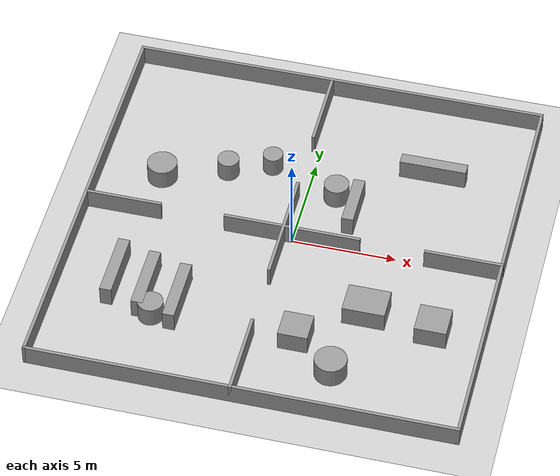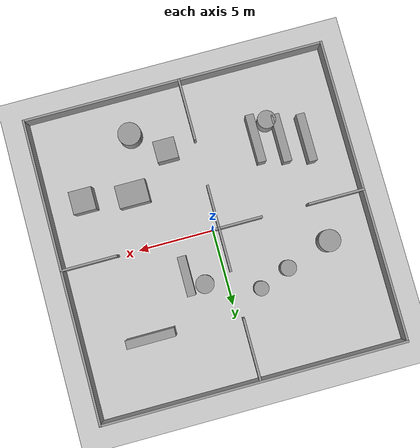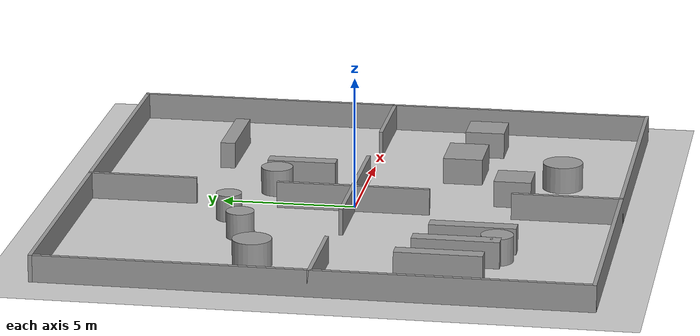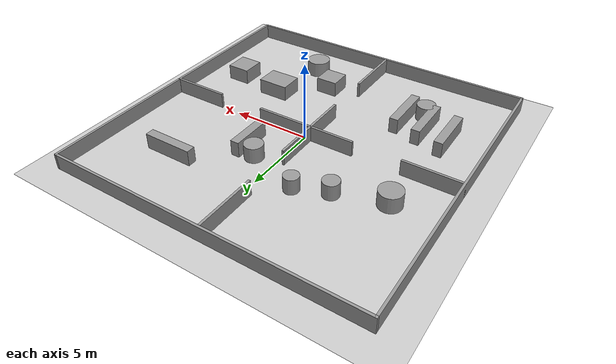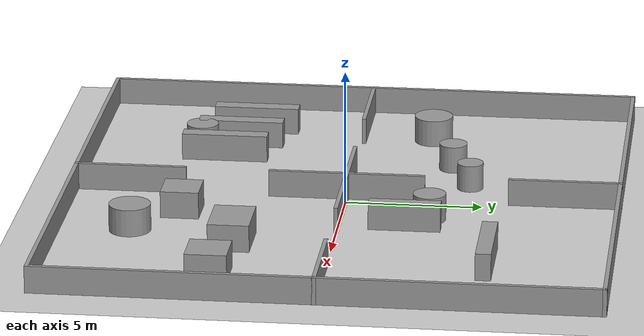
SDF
<?xml version="1.0" ?>
<sdf version="1.6">
  <world name="four_rooms">

    <include><uri>model://sun</uri></include>
    <include><uri>model://ground_plane</uri></include>

    <physics name="default_physics" default="true" type="ode">
      <max_step_size>0.001</max_step_size>
      <real_time_factor>1.0</real_time_factor>
      <real_time_update_rate>1000</real_time_update_rate>
    </physics>

    <scene>
      <ambient>0.4 0.4 0.4 1</ambient>
      <background>0.7 0.7 0.7 1</background>
      <shadows>false</shadows>
    </scene>

    <model name="four_rooms_obstacles">
      <static>true</static>
      <link name="body">
      <collision name="col_0">
        <pose>0.0000 -10.0000 0.5000 0 0 0.00000</pose>
        <geometry>
          <box><size>20.1500 0.1500 1.0000</size></box>
        </geometry>
      </collision>
      <visual name="vis_0">
        <pose>0.0000 -10.0000 0.5000 0 0 0.00000</pose>
        <geometry>
          <box><size>20.1500 0.1500 1.0000</size></box>
        </geometry>
        <material>
          <script>
            <uri>file://media/materials/scripts/gazebo.material</uri>
            <name>Gazebo/Grey</name>
          </script>
        </material>
      </visual>
      <collision name="col_1">
        <pose>10.0000 0.0000 0.5000 0 0 1.57080</pose>
        <geometry>
          <box><size>20.1500 0.1500 1.0000</size></box>
        </geometry>
      </collision>
      <visual name="vis_1">
        <pose>10.0000 0.0000 0.5000 0 0 1.57080</pose>
        <geometry>
          <box><size>20.1500 0.1500 1.0000</size></box>
        </geometry>
        <material>
          <script>
            <uri>file://media/materials/scripts/gazebo.material</uri>
            <name>Gazebo/Grey</name>
          </script>
        </material>
      </visual>
      <collision name="col_2">
        <pose>0.0000 10.0000 0.5000 0 0 3.14159</pose>
        <geometry>
          <box><size>20.1500 0.1500 1.0000</size></box>
        </geometry>
      </collision>
      <visual name="vis_2">
        <pose>0.0000 10.0000 0.5000 0 0 3.14159</pose>
        <geometry>
          <box><size>20.1500 0.1500 1.0000</size></box>
        </geometry>
        <material>
          <script>
            <uri>file://media/materials/scripts/gazebo.material</uri>
            <name>Gazebo/Grey</name>
          </script>
        </material>
      </visual>
      <collision name="col_3">
        <pose>-10.0000 0.0000 0.5000 0 0 -1.57080</pose>
        <geometry>
          <box><size>20.1500 0.1500 1.0000</size></box>
        </geometry>
      </collision>
      <visual name="vis_3">
        <pose>-10.0000 0.0000 0.5000 0 0 -1.57080</pose>
        <geometry>
          <box><size>20.1500 0.1500 1.0000</size></box>
        </geometry>
        <material>
          <script>
            <uri>file://media/materials/scripts/gazebo.material</uri>
            <name>Gazebo/Grey</name>
          </script>
        </material>
      </visual>
      <collision name="col_4">
        <pose>-0.4000 -8.0000 0.5000 0 0 1.57080</pose>
        <geometry>
          <box><size>4.1500 0.1500 1.0000</size></box>
        </geometry>
      </collision>
      <visual name="vis_4">
        <pose>-0.4000 -8.0000 0.5000 0 0 1.57080</pose>
        <geometry>
          <box><size>4.1500 0.1500 1.0000</size></box>
        </geometry>
        <material>
          <script>
            <uri>file://media/materials/scripts/gazebo.material</uri>
            <name>Gazebo/Grey</name>
          </script>
        </material>
      </visual>
      <collision name="col_5">
        <pose>-0.4000 0.0000 0.5000 0 0 1.57080</pose>
        <geometry>
          <box><size>5.7500 0.1500 1.0000</size></box>
        </geometry>
      </collision>
      <visual name="vis_5">
        <pose>-0.4000 0.0000 0.5000 0 0 1.57080</pose>
        <geometry>
          <box><size>5.7500 0.1500 1.0000</size></box>
        </geometry>
        <material>
          <script>
            <uri>file://media/materials/scripts/gazebo.material</uri>
            <name>Gazebo/Grey</name>
          </script>
        </material>
      </visual>
      <collision name="col_6">
        <pose>-0.4000 8.0000 0.5000 0 0 1.57080</pose>
        <geometry>
          <box><size>4.1500 0.1500 1.0000</size></box>
        </geometry>
      </collision>
      <visual name="vis_6">
        <pose>-0.4000 8.0000 0.5000 0 0 1.57080</pose>
        <geometry>
          <box><size>4.1500 0.1500 1.0000</size></box>
        </geometry>
        <material>
          <script>
            <uri>file://media/materials/scripts/gazebo.material</uri>
            <name>Gazebo/Grey</name>
          </script>
        </material>
      </visual>
      <collision name="col_7">
        <pose>-8.2000 0.0000 0.5000 0 0 0.00000</pose>
        <geometry>
          <box><size>3.7500 0.1500 1.0000</size></box>
        </geometry>
      </collision>
      <visual name="vis_7">
        <pose>-8.2000 0.0000 0.5000 0 0 0.00000</pose>
        <geometry>
          <box><size>3.7500 0.1500 1.0000</size></box>
        </geometry>
        <material>
          <script>
            <uri>file://media/materials/scripts/gazebo.material</uri>
            <name>Gazebo/Grey</name>
          </script>
        </material>
      </visual>
      <collision name="col_8">
        <pose>0.0000 0.0000 0.5000 0 0 0.00000</pose>
        <geometry>
          <box><size>6.5500 0.1500 1.0000</size></box>
        </geometry>
      </collision>
      <visual name="vis_8">
        <pose>0.0000 0.0000 0.5000 0 0 0.00000</pose>
        <geometry>
          <box><size>6.5500 0.1500 1.0000</size></box>
        </geometry>
        <material>
          <script>
            <uri>file://media/materials/scripts/gazebo.material</uri>
            <name>Gazebo/Grey</name>
          </script>
        </material>
      </visual>
      <collision name="col_9">
        <pose>8.2000 0.0000 0.5000 0 0 0.00000</pose>
        <geometry>
          <box><size>3.7500 0.1500 1.0000</size></box>
        </geometry>
      </collision>
      <visual name="vis_9">
        <pose>8.2000 0.0000 0.5000 0 0 0.00000</pose>
        <geometry>
          <box><size>3.7500 0.1500 1.0000</size></box>
        </geometry>
        <material>
          <script>
            <uri>file://media/materials/scripts/gazebo.material</uri>
            <name>Gazebo/Grey</name>
          </script>
        </material>
      </visual>
      <collision name="col_10">
        <pose>5.6000 5.6000 0.5000 0 0 0.00000</pose>
        <geometry>
          <box><size>3.2000 0.5600 1.0000</size></box>
        </geometry>
      </collision>
      <visual name="vis_10">
        <pose>5.6000 5.6000 0.5000 0 0 0.00000</pose>
        <geometry>
          <box><size>3.2000 0.5600 1.0000</size></box>
        </geometry>
        <material>
          <script>
            <uri>file://media/materials/scripts/gazebo.material</uri>
            <name>Gazebo/Grey</name>
          </script>
        </material>
      </visual>
      <collision name="col_11">
        <pose>4.4000 -3.6000 0.5000 0 0 0.00000</pose>
        <geometry>
          <box><size>2.0000 1.5000 1.0000</size></box>
        </geometry>
      </collision>
      <visual name="vis_11">
        <pose>4.4000 -3.6000 0.5000 0 0 0.00000</pose>
        <geometry>
          <box><size>2.0000 1.5000 1.0000</size></box>
        </geometry>
        <material>
          <script>
            <uri>file://media/materials/scripts/gazebo.material</uri>
            <name>Gazebo/Grey</name>
          </script>
        </material>
      </visual>
      <collision name="col_12">
        <pose>1.6000 -5.8000 0.5000 0 0 0.00000</pose>
        <geometry>
          <box><size>1.4000 1.4000 1.0000</size></box>
        </geometry>
      </collision>
      <visual name="vis_12">
        <pose>1.6000 -5.8000 0.5000 0 0 0.00000</pose>
        <geometry>
          <box><size>1.4000 1.4000 1.0000</size></box>
        </geometry>
        <material>
          <script>
            <uri>file://media/materials/scripts/gazebo.material</uri>
            <name>Gazebo/Grey</name>
          </script>
        </material>
      </visual>
      <collision name="col_13">
        <pose>-7.4000 -4.2000 0.5000 0 0 0.00000</pose>
        <geometry>
          <box><size>0.5600 3.2000 1.0000</size></box>
        </geometry>
      </collision>
      <visual name="vis_13">
        <pose>-7.4000 -4.2000 0.5000 0 0 0.00000</pose>
        <geometry>
          <box><size>0.5600 3.2000 1.0000</size></box>
        </geometry>
        <material>
          <script>
            <uri>file://media/materials/scripts/gazebo.material</uri>
            <name>Gazebo/Grey</name>
          </script>
        </material>
      </visual>
      <collision name="col_14">
        <pose>-5.8000 -4.6000 0.5000 0 0 0.00000</pose>
        <geometry>
          <box><size>0.5600 3.2000 1.0000</size></box>
        </geometry>
      </collision>
      <visual name="vis_14">
        <pose>-5.8000 -4.6000 0.5000 0 0 0.00000</pose>
        <geometry>
          <box><size>0.5600 3.2000 1.0000</size></box>
        </geometry>
        <material>
          <script>
            <uri>file://media/materials/scripts/gazebo.material</uri>
            <name>Gazebo/Grey</name>
          </script>
        </material>
      </visual>
      <collision name="col_15">
        <pose>-4.2000 -5.0000 0.5000 0 0 0.00000</pose>
        <geometry>
          <box><size>0.5600 3.2000 1.0000</size></box>
        </geometry>
      </collision>
      <visual name="vis_15">
        <pose>-4.2000 -5.0000 0.5000 0 0 0.00000</pose>
        <geometry>
          <box><size>0.5600 3.2000 1.0000</size></box>
        </geometry>
        <material>
          <script>
            <uri>file://media/materials/scripts/gazebo.material</uri>
            <name>Gazebo/Grey</name>
          </script>
        </material>
      </visual>
      <collision name="col_16">
        <pose>2.4000 2.4000 0.5000 0 0 0.00000</pose>
        <geometry>
          <box><size>0.5600 2.6000 1.0000</size></box>
        </geometry>
      </collision>
      <visual name="vis_16">
        <pose>2.4000 2.4000 0.5000 0 0 0.00000</pose>
        <geometry>
          <box><size>0.5600 2.6000 1.0000</size></box>
        </geometry>
        <material>
          <script>
            <uri>file://media/materials/scripts/gazebo.material</uri>
            <name>Gazebo/Grey</name>
          </script>
        </material>
      </visual>
      <collision name="col_17">
        <pose>7.6000 -4.0000 0.5000 0 0 0.00000</pose>
        <geometry>
          <box><size>1.5000 1.5000 1.0000</size></box>
        </geometry>
      </collision>
      <visual name="vis_17">
        <pose>7.6000 -4.0000 0.5000 0 0 0.00000</pose>
        <geometry>
          <box><size>1.5000 1.5000 1.0000</size></box>
        </geometry>
        <material>
          <script>
            <uri>file://media/materials/scripts/gazebo.material</uri>
            <name>Gazebo/Grey</name>
          </script>
        </material>
      </visual>
      <collision name="col_18">
        <pose>-7.0000 2.6000 0.5000 0 0 0.00000</pose>
        <geometry>
          <cylinder><radius>0.7200</radius><length>1.0000</length></cylinder>
        </geometry>
      </collision>
      <visual name="vis_18">
        <pose>-7.0000 2.6000 0.5000 0 0 0.00000</pose>
        <geometry>
          <cylinder><radius>0.7200</radius><length>1.0000</length></cylinder>
        </geometry>
        <material>
          <script>
            <uri>file://media/materials/scripts/gazebo.material</uri>
            <name>Gazebo/Grey</name>
          </script>
        </material>
      </visual>
      <collision name="col_19">
        <pose>-4.0000 3.6000 0.5000 0 0 0.00000</pose>
        <geometry>
          <cylinder><radius>0.5200</radius><length>1.0000</length></cylinder>
        </geometry>
      </collision>
      <visual name="vis_19">
        <pose>-4.0000 3.6000 0.5000 0 0 0.00000</pose>
        <geometry>
          <cylinder><radius>0.5200</radius><length>1.0000</length></cylinder>
        </geometry>
        <material>
          <script>
            <uri>file://media/materials/scripts/gazebo.material</uri>
            <name>Gazebo/Grey</name>
          </script>
        </material>
      </visual>
      <collision name="col_20">
        <pose>-2.0000 4.4000 0.5000 0 0 0.00000</pose>
        <geometry>
          <cylinder><radius>0.4800</radius><length>1.0000</length></cylinder>
        </geometry>
      </collision>
      <visual name="vis_20">
        <pose>-2.0000 4.4000 0.5000 0 0 0.00000</pose>
        <geometry>
          <cylinder><radius>0.4800</radius><length>1.0000</length></cylinder>
        </geometry>
        <material>
          <script>
            <uri>file://media/materials/scripts/gazebo.material</uri>
            <name>Gazebo/Grey</name>
          </script>
        </material>
      </visual>
      <collision name="col_21">
        <pose>1.4000 3.2000 0.5000 0 0 0.00000</pose>
        <geometry>
          <cylinder><radius>0.6000</radius><length>1.0000</length></cylinder>
        </geometry>
      </collision>
      <visual name="vis_21">
        <pose>1.4000 3.2000 0.5000 0 0 0.00000</pose>
        <geometry>
          <cylinder><radius>0.6000</radius><length>1.0000</length></cylinder>
        </geometry>
        <material>
          <script>
            <uri>file://media/materials/scripts/gazebo.material</uri>
            <name>Gazebo/Grey</name>
          </script>
        </material>
      </visual>
      <collision name="col_22">
        <pose>3.6000 -7.4000 0.5000 0 0 0.00000</pose>
        <geometry>
          <cylinder><radius>0.7600</radius><length>1.0000</length></cylinder>
        </geometry>
      </collision>
      <visual name="vis_22">
        <pose>3.6000 -7.4000 0.5000 0 0 0.00000</pose>
        <geometry>
          <cylinder><radius>0.7600</radius><length>1.0000</length></cylinder>
        </geometry>
        <material>
          <script>
            <uri>file://media/materials/scripts/gazebo.material</uri>
            <name>Gazebo/Grey</name>
          </script>
        </material>
      </visual>
      <collision name="col_23">
        <pose>-5.2000 -6.0000 0.5000 0 0 0.00000</pose>
        <geometry>
          <cylinder><radius>0.6000</radius><length>1.0000</length></cylinder>
        </geometry>
      </collision>
      <visual name="vis_23">
        <pose>-5.2000 -6.0000 0.5000 0 0 0.00000</pose>
        <geometry>
          <cylinder><radius>0.6000</radius><length>1.0000</length></cylinder>
        </geometry>
        <material>
          <script>
            <uri>file://media/materials/scripts/gazebo.material</uri>
            <name>Gazebo/Grey</name>
          </script>
        </material>
      </visual>
      </link>
    </model>

  </world>
</sdf>
